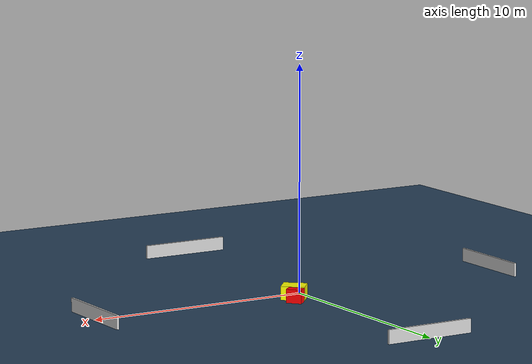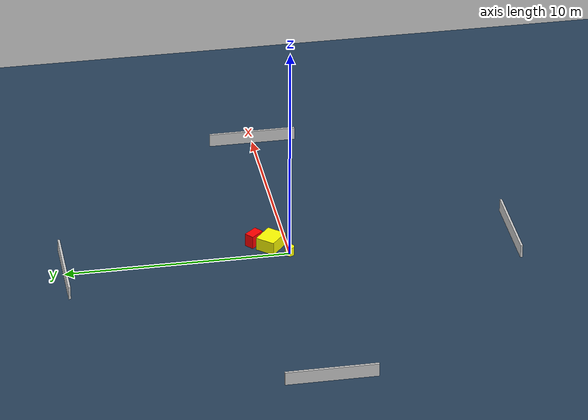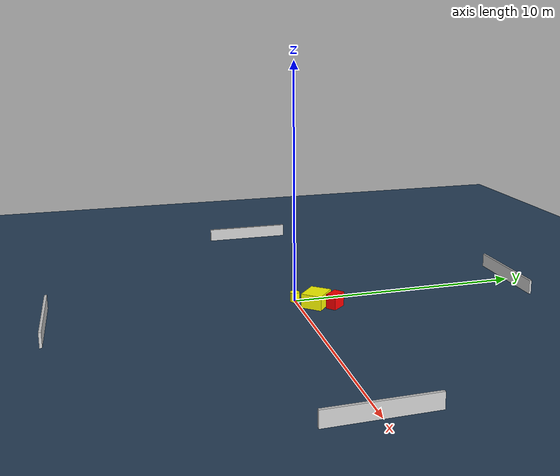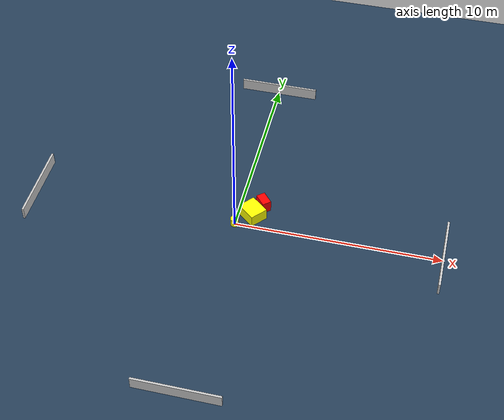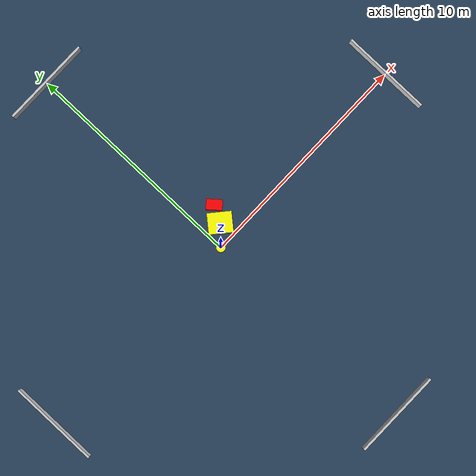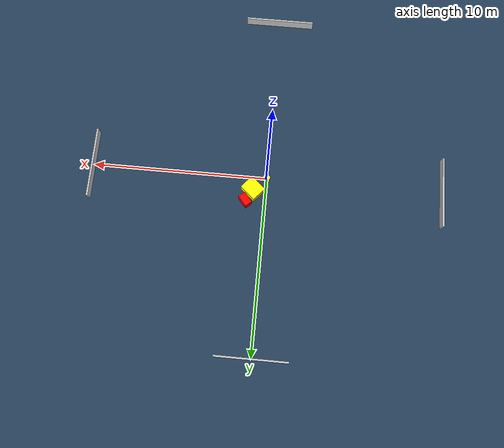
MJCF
<?xml version="1.0" ?>
<mujoco model="generated_environment">
  <option timestep="0.01" integrator="RK4" cone="elliptic"/>
  <default>
    <geom density="1"/>
  </default>
  <asset>
    <texture builtin="gradient" height="3072" name="skybox" rgb1="0.3 0.5 0.7" rgb2="0 0 0" type="skybox" width="512"/>
    <texture builtin="checker" height="300" name="groundplane" rgb1="0.2 0.3 0.4" rgb2="0.1 0.2 0.3" type="2d" width="300"/>
    <material name="groundplane" reflectance="0.2" texrepeat="5 5" texture="groundplane"/>
  </asset>
  <worldbody>
    <light dir="0 0 -1" directional="true" pos="0 0 1.5"/>
    <geom condim="3" friction="0.5 0.005 0.001" material="groundplane" name="floor" pos="0 0 0" size="0 0 0.05" type="plane"/>
    <body name="walls">
      <geom name="wall_1" condim="4" pos="-10.0 0.0 0.3" rgba="0.800000011920929 0.800000011920929 0.800000011920929 1.0" size="0.05 2.0 0.3" type="box"/>
      <geom name="wall_2" condim="4" pos="10.0 0.0 0.3" rgba="0.800000011920929 0.800000011920929 0.800000011920929 1.0" size="0.05 2.0 0.3" type="box"/>
      <geom name="wall_3" condim="4" pos="0.0 -10.0 0.3" rgba="0.800000011920929 0.800000011920929 0.800000011920929 1.0" size="2.0 0.05 0.3" type="box"/>
      <geom name="wall_4" condim="4" pos="0.0 10.0 0.3" rgba="0.800000011920929 0.800000011920929 0.800000011920929 1.0" size="2.0 0.05 0.3" type="box"/>
    </body>
    <body name="robot">
      <joint name="joint_x" type="slide" pos="0 0 0" axis="1 0 0"/>
      <joint name="joint_y" type="slide" pos="0 0 0" axis="0 1 0"/>
      <geom name="robot" type="cylinder" pos="0.0 0.0 0.2" size="0.2 0.2 0.0" mass="5.0" friction="1.0 0.005 0.0001" condim="4" rgba="1.0 1.0 0.0 1.0"/>
    </body>
    <body name="obstacle_1_movable">
      <geom name="obstacle_1_movable" condim="4" pos="0.7206965051156274 0.7219752016142147 0.3" euler="0 0 319.3604304711805" friction="0.0 0.005 0.001" rgba="1.0 1.0 0.0 1.0" size="0.5207486230024716 0.442911909848345 0.3" type="box" mass="0.1"/>
      <joint type="free"/>
    </body>
    <body name="obstacle_2_static">
      <geom name="obstacle_2_static" condim="4" pos="1.1012013142868053 1.4189170020247381 0.3" euler="0 0 310.50741931012675" friction="0.0 0.005 0.001" rgba="1.0 0.0 0.0 1.0" size="0.3427579767112107 0.2214095676541123 0.3" type="box"/>
    </body>
  </worldbody>
  <actuator>
    <motor name="actuator_x" joint="joint_x" gear="1" ctrlrange="-1 1"/>
    <motor name="actuator_y" joint="joint_y" gear="1" ctrlrange="-1 1"/>
  </actuator>
</mujoco>
